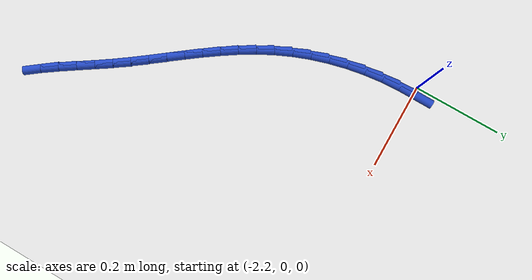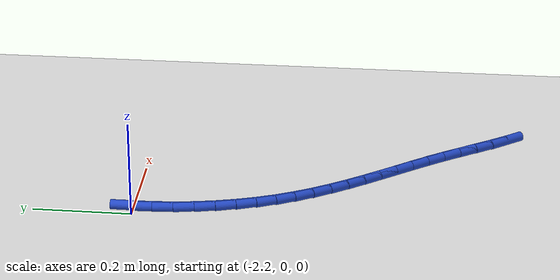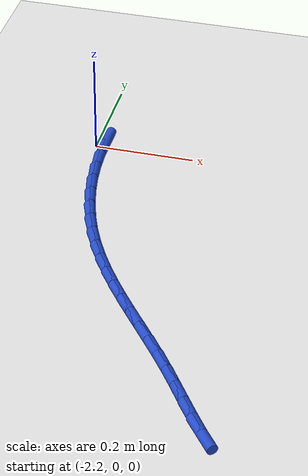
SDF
<sdf version="1.6">
 <world name="default">
  <model name="ground_plane">
   <static>1</static>
   <link name="link">
    <collision name="collision">
     <geometry><plane><normal>0 0 1</normal><size>100 100</size></plane></geometry>
     <surface><friction><ode><mu>100</mu><mu2>50</mu2></ode></friction></surface>
    </collision>
    <visual name="visual">
     <cast_shadows>0</cast_shadows>
     <geometry><plane><normal>0 0 1</normal><size>100 100</size></plane></geometry>
     <material>
      <script><uri>file://media/materials/scripts/gazebo.material</uri><name>Gazebo/WhiteGlow</name></script>
     </material>
    </visual>
   </link>
  </model>
  <model name="line">
   <link name="link_86">
    <pose>-2.180217470463775 0.004909012334665435 0.01 0 1.57 1.5638176888190947</pose>
    <collision name="collision">
     <geometry><cylinder><radius>0.01</radius><length>0.08</length></cylinder></geometry>
    </collision>
    <visual name="visual">
     <material>
      <script><name>Gazebo/Blue</name><uri>file://media/materials/scripts/gazebo.material</uri></script>
     </material>
     <geometry><cylinder><radius>0.01</radius><length>0.08</length></cylinder></geometry>
    </visual>
   </link>
   <link name="link_87">
    <pose>-2.180509329935863 -0.036912147481542354 0.01 0 1.57 -1.5142539284553405</pose>
    <collision name="collision">
     <geometry><cylinder><radius>0.01</radius><length>0.08</length></cylinder></geometry>
    </collision>
    <visual name="visual">
     <material>
      <script><name>Gazebo/Blue</name><uri>file://media/materials/scripts/gazebo.material</uri></script>
     </material>
     <geometry><cylinder><radius>0.01</radius><length>0.08</length></cylinder></geometry>
    </visual>
   </link>
   <link name="link_88">
    <pose>-2.1781352669029377 -0.07885469978661562 0.01 0 1.57 -1.4523935365513163</pose>
    <collision name="collision">
     <geometry><cylinder><radius>0.01</radius><length>0.08</length></cylinder></geometry>
    </collision>
    <visual name="visual">
     <material>
      <script><name>Gazebo/Blue</name><uri>file://media/materials/scripts/gazebo.material</uri></script>
     </material>
     <geometry><cylinder><radius>0.01</radius><length>0.08</length></cylinder></geometry>
    </visual>
   </link>
   <link name="link_89">
    <pose>-2.1731626039131857 -0.1206561101442159 0.01 0 1.57 -1.39147882334046</pose>
    <collision name="collision">
     <geometry><cylinder><radius>0.01</radius><length>0.08</length></cylinder></geometry>
    </collision>
    <visual name="visual">
     <material>
      <script><name>Gazebo/Blue</name><uri>file://media/materials/scripts/gazebo.material</uri></script>
     </material>
     <geometry><cylinder><radius>0.01</radius><length>0.08</length></cylinder></geometry>
    </visual>
   </link>
   <link name="link_90">
    <pose>-2.1656586635147916 -0.1620538441180024 0.01 0 1.57 -1.3307914342288656</pose>
    <collision name="collision">
     <geometry><cylinder><radius>0.01</radius><length>0.08</length></cylinder></geometry>
    </collision>
    <visual name="visual">
     <material>
      <script><name>Gazebo/Blue</name><uri>file://media/materials/scripts/gazebo.material</uri></script>
     </material>
     <geometry><cylinder><radius>0.01</radius><length>0.08</length></cylinder></geometry>
    </visual>
   </link>
   <link name="link_91">
    <pose>-2.1556907682559423 -0.20278536727163665 0.01 0 1.57 -1.2696024601121436</pose>
    <collision name="collision">
     <geometry><cylinder><radius>0.01</radius><length>0.08</length></cylinder></geometry>
    </collision>
    <visual name="visual">
     <material>
      <script><name>Gazebo/Blue</name><uri>file://media/materials/scripts/gazebo.material</uri></script>
     </material>
     <geometry><cylinder><radius>0.01</radius><length>0.08</length></cylinder></geometry>
    </visual>
   </link>
   <link name="link_92">
    <pose>-2.1433262406848232 -0.2425881451687793 0.01 0 1.57 -1.2071635619011645</pose>
    <collision name="collision">
     <geometry><cylinder><radius>0.01</radius><length>0.08</length></cylinder></geometry>
    </collision>
    <visual name="visual">
     <material>
      <script><name>Gazebo/Blue</name><uri>file://media/materials/scripts/gazebo.material</uri></script>
     </material>
     <geometry><cylinder><radius>0.01</radius><length>0.08</length></cylinder></geometry>
    </visual>
   </link>
   <link name="link_93">
    <pose>-2.128632403349621 -0.28119964337309133 0.01 0 1.57 -1.1428708540537709</pose>
    <collision name="collision">
     <geometry><cylinder><radius>0.01</radius><length>0.08</length></cylinder></geometry>
    </collision>
    <visual name="visual">
     <material>
      <script><name>Gazebo/Blue</name><uri>file://media/materials/scripts/gazebo.material</uri></script>
     </material>
     <geometry><cylinder><radius>0.01</radius><length>0.08</length></cylinder></geometry>
    </visual>
   </link>
   <link name="link_94">
    <pose>-2.111680735840103 -0.3183651806617624 0.01 0 1.57 -1.0812342641812736</pose>
    <collision name="collision">
     <geometry><cylinder><radius>0.01</radius><length>0.08</length></cylinder></geometry>
    </collision>
    <visual name="visual">
     <material>
      <script><name>Gazebo/Blue</name><uri>file://media/materials/scripts/gazebo.material</uri></script>
     </material>
     <geometry><cylinder><radius>0.01</radius><length>0.08</length></cylinder></geometry>
    </visual>
   </link>
   <link name="link_95">
    <pose>-2.092663026375972 -0.35405735507806424 0.01 0 1.57 -1.0285169642705592</pose>
    <collision name="collision">
     <geometry><cylinder><radius>0.01</radius><length>0.08</length></cylinder></geometry>
    </collision>
    <visual name="visual">
     <material>
      <script><name>Gazebo/Blue</name><uri>file://media/materials/scripts/gazebo.material</uri></script>
     </material>
     <geometry><cylinder><radius>0.01</radius><length>0.08</length></cylinder></geometry>
    </visual>
   </link>
   <link name="link_96">
    <pose>-2.0719069380869883 -0.3885054507388711 0.01 0 1.57 -0.9856664339003406</pose>
    <collision name="collision">
     <geometry><cylinder><radius>0.01</radius><length>0.08</length></cylinder></geometry>
    </collision>
    <visual name="visual">
     <material>
      <script><name>Gazebo/Blue</name><uri>file://media/materials/scripts/gazebo.material</uri></script>
     </material>
     <geometry><cylinder><radius>0.01</radius><length>0.08</length></cylinder></geometry>
    </visual>
   </link>
   <link name="link_97">
    <pose>-2.0497474188560987 -0.42195251364462505 0.01 0 1.57 -0.9530090227553641</pose>
    <collision name="collision">
     <geometry><cylinder><radius>0.01</radius><length>0.08</length></cylinder></geometry>
    </collision>
    <visual name="visual">
     <material>
      <script><name>Gazebo/Blue</name><uri>file://media/materials/scripts/gazebo.material</uri></script>
     </material>
     <geometry><cylinder><radius>0.01</radius><length>0.08</length></cylinder></geometry>
    </visual>
   </link>
   <link name="link_98">
    <pose>-2.0265194165662477 -0.4546415897957682 0.01 0 1.57 -0.9306666901051575</pose>
    <collision name="collision">
     <geometry><cylinder><radius>0.01</radius><length>0.08</length></cylinder></geometry>
    </collision>
    <visual name="visual">
     <material>
      <script><name>Gazebo/Blue</name><uri>file://media/materials/scripts/gazebo.material</uri></script>
     </material>
     <geometry><cylinder><radius>0.01</radius><length>0.08</length></cylinder></geometry>
    </visual>
   </link>
   <link name="link_99">
    <pose>-2.002557879100381 -0.4868157251927428 0.01 0 1.57 -0.9186563236681088</pose>
    <collision name="collision">
     <geometry><cylinder><radius>0.01</radius><length>0.08</length></cylinder></geometry>
    </collision>
    <visual name="visual">
     <material>
      <script><name>Gazebo/Blue</name><uri>file://media/materials/scripts/gazebo.material</uri></script>
     </material>
     <geometry><cylinder><radius>0.01</radius><length>0.08</length></cylinder></geometry>
    </visual>
   </link>
   <link name="link_100">
    <pose>-1.9781977543414448 -0.5187179658359901 0.01 0 1.57 -0.9169607045918894</pose>
    <collision name="collision">
     <geometry><cylinder><radius>0.01</radius><length>0.08</length></cylinder></geometry>
    </collision>
    <visual name="visual">
     <material>
      <script><name>Gazebo/Blue</name><uri>file://media/materials/scripts/gazebo.material</uri></script>
     </material>
     <geometry><cylinder><radius>0.01</radius><length>0.08</length></cylinder></geometry>
    </visual>
   </link>
   <link name="link_101">
    <pose>-1.953773990172385 -0.5505913577259524 0.01 0 1.57 -0.925566922785874</pose>
    <collision name="collision">
     <geometry><cylinder><radius>0.01</radius><length>0.08</length></cylinder></geometry>
    </collision>
    <visual name="visual">
     <material>
      <script><name>Gazebo/Blue</name><uri>file://media/materials/scripts/gazebo.material</uri></script>
     </material>
     <geometry><cylinder><radius>0.01</radius><length>0.08</length></cylinder></geometry>
    </visual>
   </link>
   <link name="link_102">
    <pose>-1.929621534476146 -0.5826789468630718 0.01 0 1.57 -0.9444717747354272</pose>
    <collision name="collision">
     <geometry><cylinder><radius>0.01</radius><length>0.08</length></cylinder></geometry>
    </collision>
    <visual name="visual">
     <material>
      <script><name>Gazebo/Blue</name><uri>file://media/materials/scripts/gazebo.material</uri></script>
     </material>
     <geometry><cylinder><radius>0.01</radius><length>0.08</length></cylinder></geometry>
    </visual>
   </link>
   <link name="link_103">
    <pose>-1.9060753351356752 -0.6152237792477903 0.01 0 1.57 -0.9698667515595212</pose>
    <collision name="collision">
     <geometry><cylinder><radius>0.01</radius><length>0.08</length></cylinder></geometry>
    </collision>
    <visual name="visual">
     <material>
      <script><name>Gazebo/Blue</name><uri>file://media/materials/scripts/gazebo.material</uri></script>
     </material>
     <geometry><cylinder><radius>0.01</radius><length>0.08</length></cylinder></geometry>
    </visual>
   </link>
   <link name="link_104">
    <pose>-1.8833482781289737 -0.6483776518000799 0.01 0 1.57 -0.9833426708161255</pose>
    <collision name="collision">
     <geometry><cylinder><radius>0.01</radius><length>0.08</length></cylinder></geometry>
    </collision>
    <visual name="visual">
     <material>
      <script><name>Gazebo/Blue</name><uri>file://media/materials/scripts/gazebo.material</uri></script>
     </material>
     <geometry><cylinder><radius>0.01</radius><length>0.08</length></cylinder></geometry>
    </visual>
   </link>
   <link name="link_105">
    <pose>-1.8610604429204882 -0.6818492006578108 0.01 0 1.57 -0.9793591804490845</pose>
    <collision name="collision">
     <geometry><cylinder><radius>0.01</radius><length>0.08</length></cylinder></geometry>
    </collision>
    <visual name="visual">
     <material>
      <script><name>Gazebo/Blue</name><uri>file://media/materials/scripts/gazebo.material</uri></script>
     </material>
     <geometry><cylinder><radius>0.01</radius><length>0.08</length></cylinder></geometry>
    </visual>
   </link>
   <link name="link_106">
    <pose>-1.8386522005967374 -0.7152127184530223 0.01 0 1.57 -0.957876237138718</pose>
    <collision name="collision">
     <geometry><cylinder><radius>0.01</radius><length>0.08</length></cylinder></geometry>
    </collision>
    <visual name="visual">
     <material>
      <script><name>Gazebo/Blue</name><uri>file://media/materials/scripts/gazebo.material</uri></script>
     </material>
     <geometry><cylinder><radius>0.01</radius><length>0.08</length></cylinder></geometry>
    </visual>
   </link>
   <link name="link_107">
    <pose>-1.8155638821850346 -0.748042467870935 0.01 0 1.57 -0.9188075495858937</pose>
    <collision name="collision">
     <geometry><cylinder><radius>0.01</radius><length>0.08</length></cylinder></geometry>
    </collision>
    <visual name="visual">
     <material>
      <script><name>Gazebo/Blue</name><uri>file://media/materials/scripts/gazebo.material</uri></script>
     </material>
     <geometry><cylinder><radius>0.01</radius><length>0.08</length></cylinder></geometry>
    </visual>
   </link>
  </model>
 </world>
</sdf>
